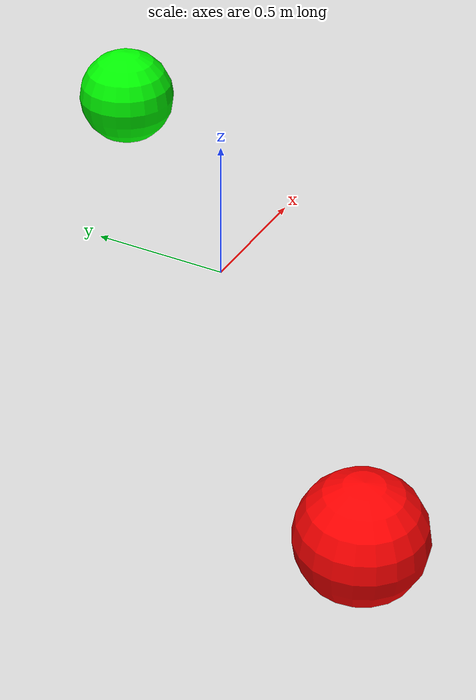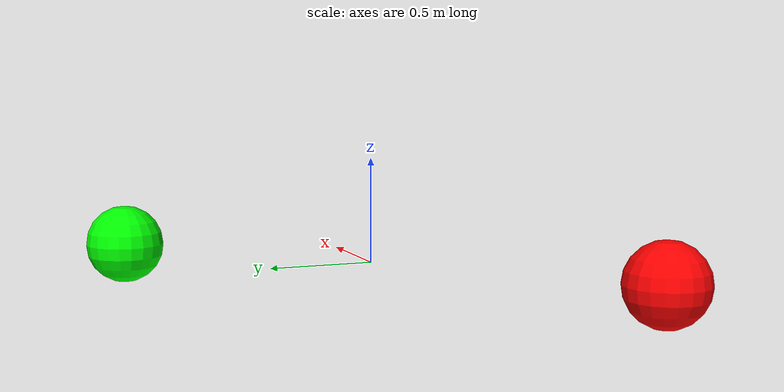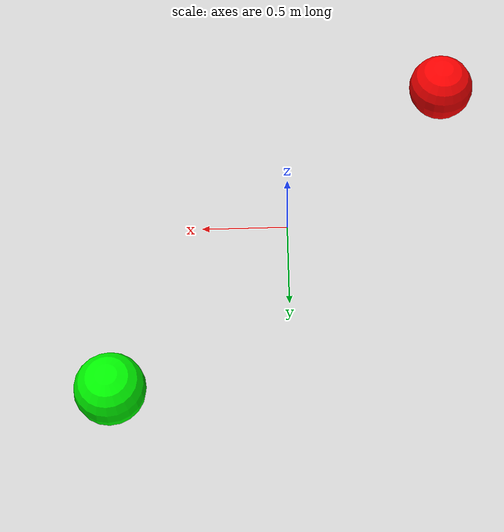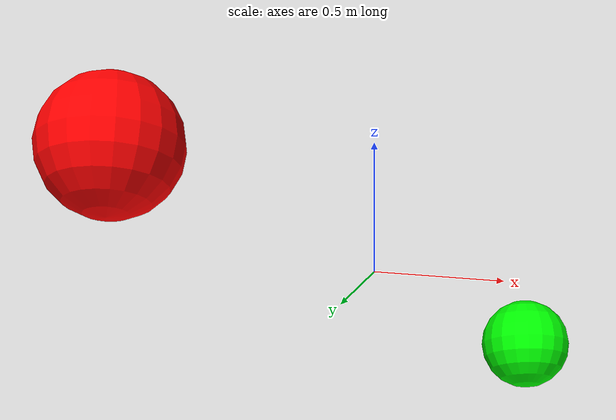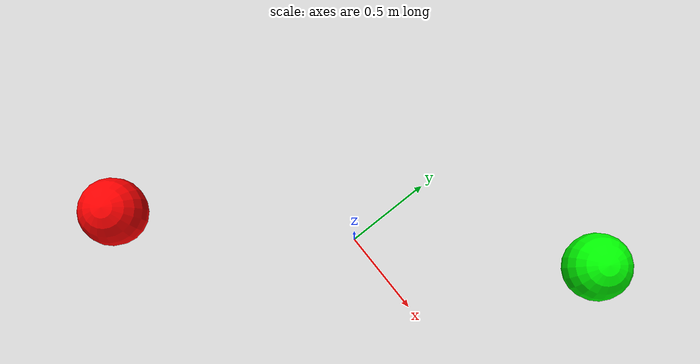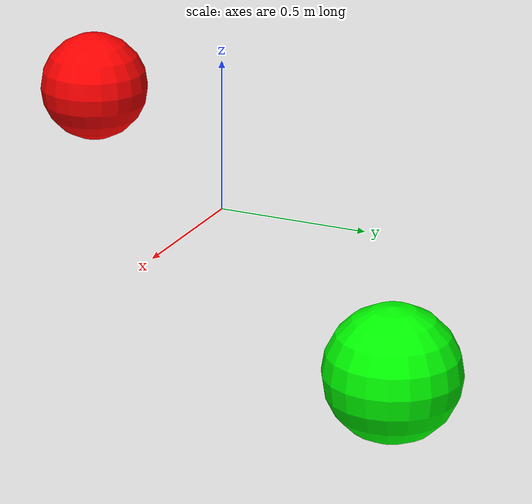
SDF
<?xml version="1.0"?>
<sdf version="1.6">
  <model name="multiantenna_gnss_test_model">
    <link name="aux_antenna">
      <pose>1 1 0 0 0 0</pose>
      <inertial>
        <inertia>
          <ixx>0.001</ixx>
          <ixy>0.000</ixy>
          <ixz>0.000</ixz>
          <iyy>0.001</iyy>
          <iyz>0.000</iyz>
          <izz>0.001</izz>
        </inertia>
        <mass>1.0</mass>
      </inertial>
      <visual name="aux_antenna">
        <geometry>
          <sphere>
            <radius>0.2</radius>
          </sphere>
        </geometry>
        <material>
          <ambient>0 1 0 1</ambient>
        </material>
      </visual>
      <collision name="aux_antenna">
        <geometry>
          <sphere>
            <radius>0.2</radius>
          </sphere>
        </geometry>
      </collision>
      <sensor
          name="aux_gps"
          type="gps">
        <always_on>true</always_on>
        <update_rate>1.0</update_rate>
        <gps>
          <position_sensing>
            <horizontal>
              <noise type="gaussian">
                <mean>1e-4</mean>
                <stddev>1e-5</stddev>
              </noise>
            </horizontal>
            <vertical>
              <noise type="gaussian">
                <mean>1e-4</mean>
                <stddev>1e-5</stddev>
              </noise>
            </vertical>
          </position_sensing>
        </gps>
      </sensor>
    </link>
    <link name="main_antenna">
      <pose>-1 -1 0 0 0 0</pose>
      <inertial>
        <inertia>
          <ixx>0.001</ixx>
          <ixy>0.000</ixy>
          <ixz>0.000</ixz>
          <iyy>0.001</iyy>
          <iyz>0.000</iyz>
          <izz>0.001</izz>
        </inertia>
        <mass>1.0</mass>
      </inertial>
      <visual name="main_antenna">
        <geometry>
          <sphere>
            <radius>0.2</radius>
          </sphere>
        </geometry>
        <material>
          <ambient>1 0 0 1</ambient>
        </material>
      </visual>
      <collision name="main_antenna">
        <geometry>
          <sphere>
            <radius>0.2</radius>
          </sphere>
        </geometry>
      </collision>
      <sensor
          name="main_gps"
          type="gps">
        <always_on>true</always_on>
        <update_rate>1.0</update_rate>
        <gps>
          <position_sensing>
            <horizontal>
              <noise type="gaussian">
                <mean>1e-4</mean>
                <stddev>1e-5</stddev>
              </noise>
            </horizontal>
            <vertical>
              <noise type="gaussian">
                <mean>1e-4</mean>
                <stddev>1e-5</stddev>
              </noise>
            </vertical>
          </position_sensing>
        </gps>
        <plugin
            name="main_gps_ros"
            filename="libgazebo_ros_multiantenna_gnss.so">
          <ros>
            <remapping>~/gphdt:=gphdt</remapping>
          </ros>
          <aux_sensor>aux_gps</aux_sensor>
        </plugin>
      </sensor>
    </link>
  </model>
</sdf>
